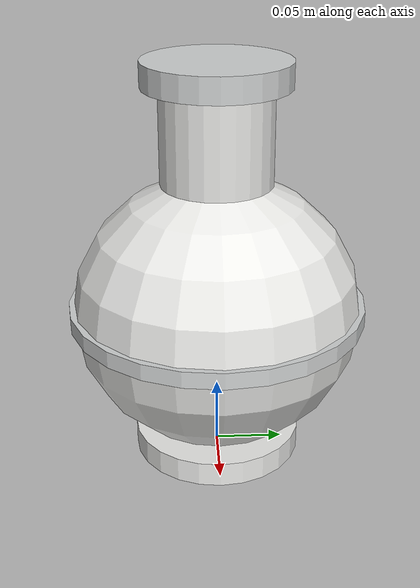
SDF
<?xml version="1.0"?>
<sdf version="1.6">
  <model name="decor_vase">
    <static>true</static>
    <link name="link">
      <visual name="foot">
        <pose>0 0 0.009 0 0 0</pose>
        <geometry><cylinder><radius>0.062</radius><length>0.018</length></cylinder></geometry>
        <material><pbr><metal><metalness>0.00</metalness><roughness>0.15</roughness></metal></pbr><ambient>0.900 0.900 0.890 1</ambient><diffuse>0.900 0.900 0.890 1</diffuse><specular>0.3 0.3 0.3 1</specular><emissive>0 0 0 1</emissive></material>
      </visual>
      <visual name="body">
        <pose>0 0 0.115 0 0 0</pose>
        <geometry><ellipsoid><radii>0.105 0.105 0.1</radii></ellipsoid></geometry>
        <material><pbr><metal><metalness>0.00</metalness><roughness>0.15</roughness></metal></pbr><ambient>0.900 0.900 0.890 1</ambient><diffuse>0.900 0.900 0.890 1</diffuse><specular>0.3 0.3 0.3 1</specular><emissive>0 0 0 1</emissive></material>
      </visual>
      <visual name="band">
        <pose>0 0 0.115 0 0 0</pose>
        <geometry><cylinder><radius>0.108</radius><length>0.012</length></cylinder></geometry>
        <material><pbr><metal><metalness>0.00</metalness><roughness>0.12</roughness></metal></pbr><ambient>0.800 0.810 0.810 1</ambient><diffuse>0.800 0.810 0.810 1</diffuse><specular>0.3 0.3 0.3 1</specular><emissive>0 0 0 1</emissive></material>
      </visual>
      <visual name="neck">
        <pose>0 0 0.245 0 0 0</pose>
        <geometry><cylinder><radius>0.04</radius><length>0.07</length></cylinder></geometry>
        <material><pbr><metal><metalness>0.00</metalness><roughness>0.15</roughness></metal></pbr><ambient>0.900 0.900 0.890 1</ambient><diffuse>0.900 0.900 0.890 1</diffuse><specular>0.3 0.3 0.3 1</specular><emissive>0 0 0 1</emissive></material>
      </visual>
      <visual name="rim">
        <pose>0 0 0.287 0 0 0</pose>
        <geometry><cylinder><radius>0.052</radius><length>0.018</length></cylinder></geometry>
        <material><pbr><metal><metalness>0.00</metalness><roughness>0.12</roughness></metal></pbr><ambient>0.800 0.810 0.810 1</ambient><diffuse>0.800 0.810 0.810 1</diffuse><specular>0.3 0.3 0.3 1</specular><emissive>0 0 0 1</emissive></material>
      </visual>
      <collision name="body">
        <pose>0 0 0.148 0 0 0</pose>
        <geometry><cylinder><radius>0.108</radius><length>0.296</length></cylinder></geometry>
      </collision>
    </link>
    <allow_auto_disable>1</allow_auto_disable>
  </model>
</sdf>
